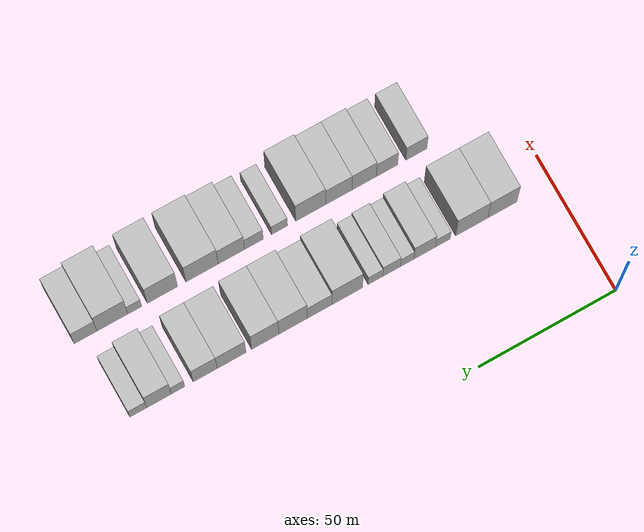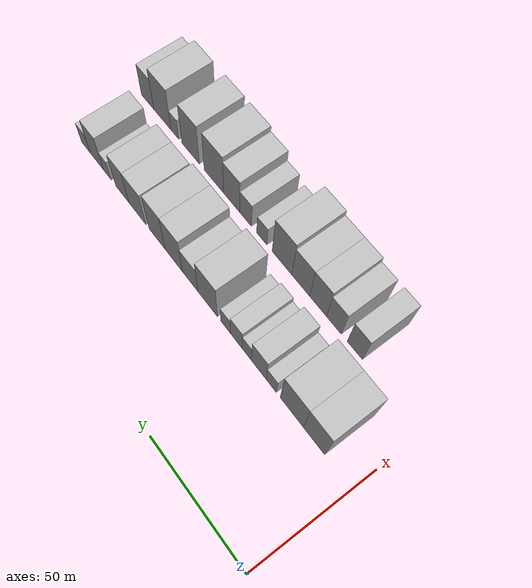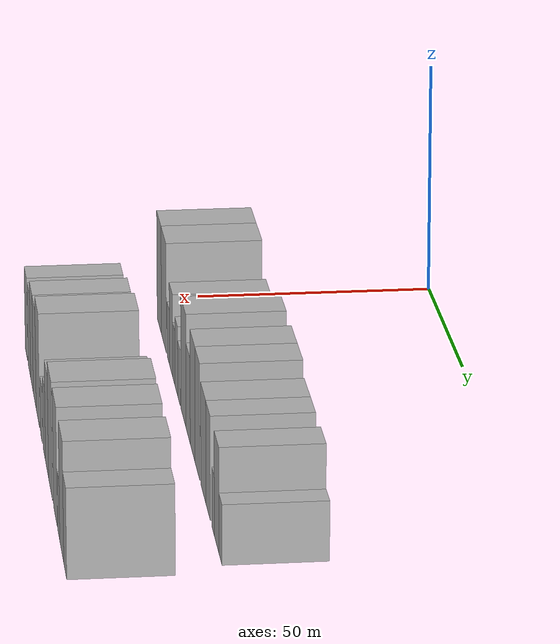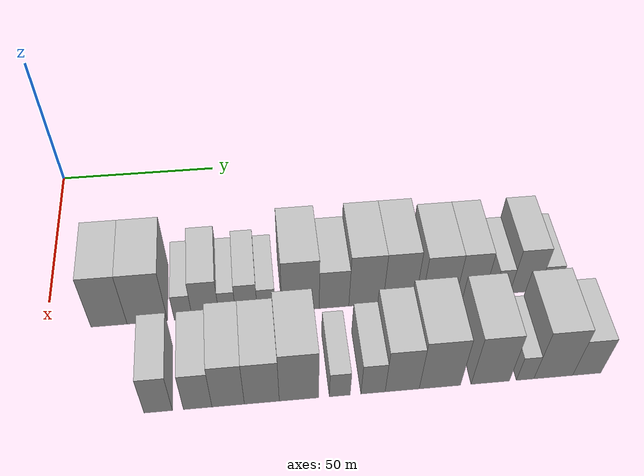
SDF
<sdf version="1.6">
 <world name="default">
  <model name="building_31">
   <static>1</static>
   <pose>50.0000 18.3045 0 0.000000 0.000000 0.000000</pose>
   <link name="link">
    <pose>0 0 12.00 0 0 0</pose>
    <collision name="collision"><geometry><box><size>20.0000 10.5250 24.0000</size></box></geometry></collision>
    <visual name="visual">
     <cast_shadows>0</cast_shadows>
     <geometry><box><size>20.0000 10.5250 24.0000</size></box></geometry>
     <material>
      <script>
       <uri>model://HANNAS_wall/materials/scripts</uri>
       <uri>model://HANNAS_wall/materials/textures</uri>
       <name>vrc/HANNAS_wall</name>
      </script>
     </material>
    </visual>
   </link>
  </model>
  <model name="building_32">
   <static>1</static>
   <pose>50.0000 29.4682 0 0.000000 0.000000 0.000000</pose>
   <link name="link">
    <pose>0 0 12.00 0 0 0</pose>
    <collision name="collision"><geometry><box><size>20.0000 11.8026 24.0000</size></box></geometry></collision>
    <visual name="visual">
     <cast_shadows>0</cast_shadows>
     <geometry><box><size>20.0000 11.8026 24.0000</size></box></geometry>
     <material>
      <script>
       <uri>model://HANNAS_wall/materials/scripts</uri>
       <uri>model://HANNAS_wall/materials/textures</uri>
       <name>vrc/HANNAS_wall</name>
      </script>
     </material>
    </visual>
   </link>
  </model>
  <model name="building_33">
   <static>1</static>
   <pose>50.0000 40.0269 0 0.000000 0.000000 0.000000</pose>
   <link name="link">
    <pose>0 0 6.00 0 0 0</pose>
    <collision name="collision"><geometry><box><size>20.0000 5.3147 12.0000</size></box></geometry></collision>
    <visual name="visual">
     <cast_shadows>0</cast_shadows>
     <geometry><box><size>20.0000 5.3147 12.0000</size></box></geometry>
     <material>
      <script>
       <uri>model://HANNAS_wall/materials/scripts</uri>
       <uri>model://HANNAS_wall/materials/textures</uri>
       <name>vrc/HANNAS_wall</name>
      </script>
     </material>
    </visual>
   </link>
  </model>
  <model name="building_34">
   <static>1</static>
   <pose>50.0000 46.6303 0 0.000000 0.000000 0.000000</pose>
   <link name="link">
    <pose>0 0 9.00 0 0 0</pose>
    <collision name="collision"><geometry><box><size>20.0000 7.8922 18.0000</size></box></geometry></collision>
    <visual name="visual">
     <cast_shadows>0</cast_shadows>
     <geometry><box><size>20.0000 7.8922 18.0000</size></box></geometry>
     <material>
      <script>
       <uri>model://HANNAS_wall/materials/scripts</uri>
       <uri>model://HANNAS_wall/materials/textures</uri>
       <name>vrc/HANNAS_wall</name>
      </script>
     </material>
    </visual>
   </link>
  </model>
  <model name="building_35">
   <static>1</static>
   <pose>50.0000 53.0246 0 0.000000 0.000000 0.000000</pose>
   <link name="link">
    <pose>0 0 6.00 0 0 0</pose>
    <collision name="collision"><geometry><box><size>20.0000 4.8964 12.0000</size></box></geometry></collision>
    <visual name="visual">
     <cast_shadows>0</cast_shadows>
     <geometry><box><size>20.0000 4.8964 12.0000</size></box></geometry>
     <material>
      <script>
       <uri>model://HANNAS_wall/materials/scripts</uri>
       <uri>model://HANNAS_wall/materials/textures</uri>
       <name>vrc/HANNAS_wall</name>
      </script>
     </material>
    </visual>
   </link>
  </model>
  <model name="building_36">
   <static>1</static>
   <pose>50.0000 58.6801 0 0.000000 0.000000 0.000000</pose>
   <link name="link">
    <pose>0 0 7.50 0 0 0</pose>
    <collision name="collision"><geometry><box><size>20.0000 6.4146 15.0000</size></box></geometry></collision>
    <visual name="visual">
     <cast_shadows>0</cast_shadows>
     <geometry><box><size>20.0000 6.4146 15.0000</size></box></geometry>
     <material>
      <script>
       <uri>model://HANNAS_wall/materials/scripts</uri>
       <uri>model://HANNAS_wall/materials/textures</uri>
       <name>vrc/HANNAS_wall</name>
      </script>
     </material>
    </visual>
   </link>
  </model>
  <model name="building_37">
   <static>1</static>
   <pose>50.0000 64.5308 0 0.000000 0.000000 0.000000</pose>
   <link name="link">
    <pose>0 0 6.00 0 0 0</pose>
    <collision name="collision"><geometry><box><size>20.0000 5.2868 12.0000</size></box></geometry></collision>
    <visual name="visual">
     <cast_shadows>0</cast_shadows>
     <geometry><box><size>20.0000 5.2868 12.0000</size></box></geometry>
     <material>
      <script>
       <uri>model://HANNAS_wall/materials/scripts</uri>
       <uri>model://HANNAS_wall/materials/textures</uri>
       <name>vrc/HANNAS_wall</name>
      </script>
     </material>
    </visual>
   </link>
  </model>
  <model name="building_38">
   <static>1</static>
   <pose>50.0000 74.7071 0 0.000000 0.000000 0.000000</pose>
   <link name="link">
    <pose>0 0 12.00 0 0 0</pose>
    <collision name="collision"><geometry><box><size>20.0000 11.0657 24.0000</size></box></geometry></collision>
    <visual name="visual">
     <cast_shadows>0</cast_shadows>
     <geometry><box><size>20.0000 11.0657 24.0000</size></box></geometry>
     <material>
      <script>
       <uri>model://HANNAS_wall/materials/scripts</uri>
       <uri>model://HANNAS_wall/materials/textures</uri>
       <name>vrc/HANNAS_wall</name>
      </script>
     </material>
    </visual>
   </link>
  </model>
  <model name="building_39">
   <static>1</static>
   <pose>50.0000 84.6900 0 0.000000 0.000000 0.000000</pose>
   <link name="link">
    <pose>0 0 9.00 0 0 0</pose>
    <collision name="collision"><geometry><box><size>20.0000 8.9002 18.0000</size></box></geometry></collision>
    <visual name="visual">
     <cast_shadows>0</cast_shadows>
     <geometry><box><size>20.0000 8.9002 18.0000</size></box></geometry>
     <material>
      <script>
       <uri>model://HANNAS_wall/materials/scripts</uri>
       <uri>model://HANNAS_wall/materials/textures</uri>
       <name>vrc/HANNAS_wall</name>
      </script>
     </material>
    </visual>
   </link>
  </model>
  <model name="building_40">
   <static>1</static>
   <pose>50.0000 94.2811 0 0.000000 0.000000 0.000000</pose>
   <link name="link">
    <pose>0 0 12.00 0 0 0</pose>
    <collision name="collision"><geometry><box><size>20.0000 10.2821 24.0000</size></box></geometry></collision>
    <visual name="visual">
     <cast_shadows>0</cast_shadows>
     <geometry><box><size>20.0000 10.2821 24.0000</size></box></geometry>
     <material>
      <script>
       <uri>model://HANNAS_wall/materials/scripts</uri>
       <uri>model://HANNAS_wall/materials/textures</uri>
       <name>vrc/HANNAS_wall</name>
      </script>
     </material>
    </visual>
   </link>
  </model>
  <model name="building_41">
   <static>1</static>
   <pose>50.0000 104.3454 0 0.000000 0.000000 0.000000</pose>
   <link name="link">
    <pose>0 0 12.00 0 0 0</pose>
    <collision name="collision"><geometry><box><size>20.0000 9.8465 24.0000</size></box></geometry></collision>
    <visual name="visual">
     <cast_shadows>0</cast_shadows>
     <geometry><box><size>20.0000 9.8465 24.0000</size></box></geometry>
     <material>
      <script>
       <uri>model://HANNAS_wall/materials/scripts</uri>
       <uri>model://HANNAS_wall/materials/textures</uri>
       <name>vrc/HANNAS_wall</name>
      </script>
     </material>
    </visual>
   </link>
  </model>
  <model name="building_42">
   <static>1</static>
   <pose>50.0000 116.4671 0 0.000000 0.000000 0.000000</pose>
   <link name="link">
    <pose>0 0 10.50 0 0 0</pose>
    <collision name="collision"><geometry><box><size>20.0000 10.3969 21.0000</size></box></geometry></collision>
    <visual name="visual">
     <cast_shadows>0</cast_shadows>
     <geometry><box><size>20.0000 10.3969 21.0000</size></box></geometry>
     <material>
      <script>
       <uri>model://HANNAS_wall/materials/scripts</uri>
       <uri>model://HANNAS_wall/materials/textures</uri>
       <name>vrc/HANNAS_wall</name>
      </script>
     </material>
    </visual>
   </link>
  </model>
  <model name="building_43">
   <static>1</static>
   <pose>50.0000 125.9778 0 0.000000 0.000000 0.000000</pose>
   <link name="link">
    <pose>0 0 10.50 0 0 0</pose>
    <collision name="collision"><geometry><box><size>20.0000 8.6244 21.0000</size></box></geometry></collision>
    <visual name="visual">
     <cast_shadows>0</cast_shadows>
     <geometry><box><size>20.0000 8.6244 21.0000</size></box></geometry>
     <material>
      <script>
       <uri>model://HANNAS_wall/materials/scripts</uri>
       <uri>model://HANNAS_wall/materials/textures</uri>
       <name>vrc/HANNAS_wall</name>
      </script>
     </material>
    </visual>
   </link>
  </model>
  <model name="building_44">
   <static>1</static>
   <pose>50.0000 135.7127 0 0.000000 0.000000 0.000000</pose>
   <link name="link">
    <pose>0 0 6.00 0 0 0</pose>
    <collision name="collision"><geometry><box><size>20.0000 4.8454 12.0000</size></box></geometry></collision>
    <visual name="visual">
     <cast_shadows>0</cast_shadows>
     <geometry><box><size>20.0000 4.8454 12.0000</size></box></geometry>
     <material>
      <script>
       <uri>model://HANNAS_wall/materials/scripts</uri>
       <uri>model://HANNAS_wall/materials/textures</uri>
       <name>vrc/HANNAS_wall</name>
      </script>
     </material>
    </visual>
   </link>
  </model>
  <model name="building_45">
   <static>1</static>
   <pose>50.0000 142.5539 0 0.000000 0.000000 0.000000</pose>
   <link name="link">
    <pose>0 0 10.50 0 0 0</pose>
    <collision name="collision"><geometry><box><size>20.0000 8.8371 21.0000</size></box></geometry></collision>
    <visual name="visual">
     <cast_shadows>0</cast_shadows>
     <geometry><box><size>20.0000 8.8371 21.0000</size></box></geometry>
     <material>
      <script>
       <uri>model://HANNAS_wall/materials/scripts</uri>
       <uri>model://HANNAS_wall/materials/textures</uri>
       <name>vrc/HANNAS_wall</name>
      </script>
     </material>
    </visual>
   </link>
  </model>
  <model name="building_46">
   <static>1</static>
   <pose>50.0000 149.9584 0 0.000000 0.000000 0.000000</pose>
   <link name="link">
    <pose>0 0 6.00 0 0 0</pose>
    <collision name="collision"><geometry><box><size>20.0000 5.9719 12.0000</size></box></geometry></collision>
    <visual name="visual">
     <cast_shadows>0</cast_shadows>
     <geometry><box><size>20.0000 5.9719 12.0000</size></box></geometry>
     <material>
      <script>
       <uri>model://HANNAS_wall/materials/scripts</uri>
       <uri>model://HANNAS_wall/materials/textures</uri>
       <name>vrc/HANNAS_wall</name>
      </script>
     </material>
    </visual>
   </link>
  </model>
  <model name="building_90">
   <static>1</static>
   <pose>79.0000 33.1188 0 0.000000 0.000000 0.000000</pose>
   <link name="link">
    <pose>0 0 9.00 0 0 0</pose>
    <collision name="collision"><geometry><box><size>20.0000 7.6847 18.0000</size></box></geometry></collision>
    <visual name="visual">
     <cast_shadows>0</cast_shadows>
     <geometry><box><size>20.0000 7.6847 18.0000</size></box></geometry>
     <material>
      <script>
       <uri>model://HANNAS_wall/materials/scripts</uri>
       <uri>model://HANNAS_wall/materials/textures</uri>
       <name>vrc/HANNAS_wall</name>
      </script>
     </material>
    </visual>
   </link>
  </model>
  <model name="building_91">
   <static>1</static>
   <pose>79.0000 43.8431 0 0.000000 0.000000 0.000000</pose>
   <link name="link">
    <pose>0 0 9.00 0 0 0</pose>
    <collision name="collision"><geometry><box><size>20.0000 7.7638 18.0000</size></box></geometry></collision>
    <visual name="visual">
     <cast_shadows>0</cast_shadows>
     <geometry><box><size>20.0000 7.7638 18.0000</size></box></geometry>
     <material>
      <script>
       <uri>model://HANNAS_wall/materials/scripts</uri>
       <uri>model://HANNAS_wall/materials/textures</uri>
       <name>vrc/HANNAS_wall</name>
      </script>
     </material>
    </visual>
   </link>
  </model>
  <model name="building_92">
   <static>1</static>
   <pose>79.0000 52.1648 0 0.000000 0.000000 0.000000</pose>
   <link name="link">
    <pose>0 0 10.50 0 0 0</pose>
    <collision name="collision"><geometry><box><size>20.0000 8.8795 21.0000</size></box></geometry></collision>
    <visual name="visual">
     <cast_shadows>0</cast_shadows>
     <geometry><box><size>20.0000 8.8795 21.0000</size></box></geometry>
     <material>
      <script>
       <uri>model://HANNAS_wall/materials/scripts</uri>
       <uri>model://HANNAS_wall/materials/textures</uri>
       <name>vrc/HANNAS_wall</name>
      </script>
     </material>
    </visual>
   </link>
  </model>
  <model name="building_93">
   <static>1</static>
   <pose>79.0000 61.3990 0 0.000000 0.000000 0.000000</pose>
   <link name="link">
    <pose>0 0 10.50 0 0 0</pose>
    <collision name="collision"><geometry><box><size>20.0000 9.5889 21.0000</size></box></geometry></collision>
    <visual name="visual">
     <cast_shadows>0</cast_shadows>
     <geometry><box><size>20.0000 9.5889 21.0000</size></box></geometry>
     <material>
      <script>
       <uri>model://HANNAS_wall/materials/scripts</uri>
       <uri>model://HANNAS_wall/materials/textures</uri>
       <name>vrc/HANNAS_wall</name>
      </script>
     </material>
    </visual>
   </link>
  </model>
  <model name="building_94">
   <static>1</static>
   <pose>79.0000 71.6170 0 0.000000 0.000000 0.000000</pose>
   <link name="link">
    <pose>0 0 12.00 0 0 0</pose>
    <collision name="collision"><geometry><box><size>20.0000 10.8472 24.0000</size></box></geometry></collision>
    <visual name="visual">
     <cast_shadows>0</cast_shadows>
     <geometry><box><size>20.0000 10.8472 24.0000</size></box></geometry>
     <material>
      <script>
       <uri>model://HANNAS_wall/materials/scripts</uri>
       <uri>model://HANNAS_wall/materials/textures</uri>
       <name>vrc/HANNAS_wall</name>
      </script>
     </material>
    </visual>
   </link>
  </model>
  <model name="building_95">
   <static>1</static>
   <pose>79.0000 82.9405 0 0.000000 0.000000 0.000000</pose>
   <link name="link">
    <pose>0 0 6.00 0 0 0</pose>
    <collision name="collision"><geometry><box><size>20.0000 5.7998 12.0000</size></box></geometry></collision>
    <visual name="visual">
     <cast_shadows>0</cast_shadows>
     <geometry><box><size>20.0000 5.7998 12.0000</size></box></geometry>
     <material>
      <script>
       <uri>model://HANNAS_wall/materials/scripts</uri>
       <uri>model://HANNAS_wall/materials/textures</uri>
       <name>vrc/HANNAS_wall</name>
      </script>
     </material>
    </visual>
   </link>
  </model>
  <model name="building_96">
   <static>1</static>
   <pose>79.0000 92.2154 0 0.000000 0.000000 0.000000</pose>
   <link name="link">
    <pose>0 0 7.50 0 0 0</pose>
    <collision name="collision"><geometry><box><size>20.0000 6.7500 15.0000</size></box></geometry></collision>
    <visual name="visual">
     <cast_shadows>0</cast_shadows>
     <geometry><box><size>20.0000 6.7500 15.0000</size></box></geometry>
     <material>
      <script>
       <uri>model://HANNAS_wall/materials/scripts</uri>
       <uri>model://HANNAS_wall/materials/textures</uri>
       <name>vrc/HANNAS_wall</name>
      </script>
     </material>
    </visual>
   </link>
  </model>
  <model name="building_97">
   <static>1</static>
   <pose>79.0000 100.3749 0 0.000000 0.000000 0.000000</pose>
   <link name="link">
    <pose>0 0 10.50 0 0 0</pose>
    <collision name="collision"><geometry><box><size>20.0000 9.5691 21.0000</size></box></geometry></collision>
    <visual name="visual">
     <cast_shadows>0</cast_shadows>
     <geometry><box><size>20.0000 9.5691 21.0000</size></box></geometry>
     <material>
      <script>
       <uri>model://HANNAS_wall/materials/scripts</uri>
       <uri>model://HANNAS_wall/materials/textures</uri>
       <name>vrc/HANNAS_wall</name>
      </script>
     </material>
    </visual>
   </link>
  </model>
  <model name="building_98">
   <static>1</static>
   <pose>79.0000 110.9845 0 0.000000 0.000000 0.000000</pose>
   <link name="link">
    <pose>0 0 12.00 0 0 0</pose>
    <collision name="collision"><geometry><box><size>20.0000 11.6500 24.0000</size></box></geometry></collision>
    <visual name="visual">
     <cast_shadows>0</cast_shadows>
     <geometry><box><size>20.0000 11.6500 24.0000</size></box></geometry>
     <material>
      <script>
       <uri>model://HANNAS_wall/materials/scripts</uri>
       <uri>model://HANNAS_wall/materials/textures</uri>
       <name>vrc/HANNAS_wall</name>
      </script>
     </material>
    </visual>
   </link>
  </model>
  <model name="building_99">
   <static>1</static>
   <pose>79.0000 125.2608 0 0.000000 0.000000 0.000000</pose>
   <link name="link">
    <pose>0 0 12.00 0 0 0</pose>
    <collision name="collision"><geometry><box><size>20.0000 10.9028 24.0000</size></box></geometry></collision>
    <visual name="visual">
     <cast_shadows>0</cast_shadows>
     <geometry><box><size>20.0000 10.9028 24.0000</size></box></geometry>
     <material>
      <script>
       <uri>model://HANNAS_wall/materials/scripts</uri>
       <uri>model://HANNAS_wall/materials/textures</uri>
       <name>vrc/HANNAS_wall</name>
      </script>
     </material>
    </visual>
   </link>
  </model>
  <model name="building_100">
   <static>1</static>
   <pose>79.0000 135.2028 0 0.000000 0.000000 0.000000</pose>
   <link name="link">
    <pose>0 0 6.00 0 0 0</pose>
    <collision name="collision"><geometry><box><size>20.0000 4.9811 12.0000</size></box></geometry></collision>
    <visual name="visual">
     <cast_shadows>0</cast_shadows>
     <geometry><box><size>20.0000 4.9811 12.0000</size></box></geometry>
     <material>
      <script>
       <uri>model://HANNAS_wall/materials/scripts</uri>
       <uri>model://HANNAS_wall/materials/textures</uri>
       <name>vrc/HANNAS_wall</name>
      </script>
     </material>
    </visual>
   </link>
  </model>
  <model name="building_101">
   <static>1</static>
   <pose>79.0000 143.2543 0 0.000000 0.000000 0.000000</pose>
   <link name="link">
    <pose>0 0 12.00 0 0 0</pose>
    <collision name="collision"><geometry><box><size>20.0000 11.1219 24.0000</size></box></geometry></collision>
    <visual name="visual">
     <cast_shadows>0</cast_shadows>
     <geometry><box><size>20.0000 11.1219 24.0000</size></box></geometry>
     <material>
      <script>
       <uri>model://HANNAS_wall/materials/scripts</uri>
       <uri>model://HANNAS_wall/materials/textures</uri>
       <name>vrc/HANNAS_wall</name>
      </script>
     </material>
    </visual>
   </link>
  </model>
  <model name="building_102">
   <static>1</static>
   <pose>79.0000 152.8846 0 0.000000 0.000000 0.000000</pose>
   <link name="link">
    <pose>0 0 9.00 0 0 0</pose>
    <collision name="collision"><geometry><box><size>20.0000 8.1387 18.0000</size></box></geometry></collision>
    <visual name="visual">
     <cast_shadows>0</cast_shadows>
     <geometry><box><size>20.0000 8.1387 18.0000</size></box></geometry>
     <material>
      <script>
       <uri>model://HANNAS_wall/materials/scripts</uri>
       <uri>model://HANNAS_wall/materials/textures</uri>
       <name>vrc/HANNAS_wall</name>
      </script>
     </material>
    </visual>
   </link>
  </model>
 </world>
</sdf>
